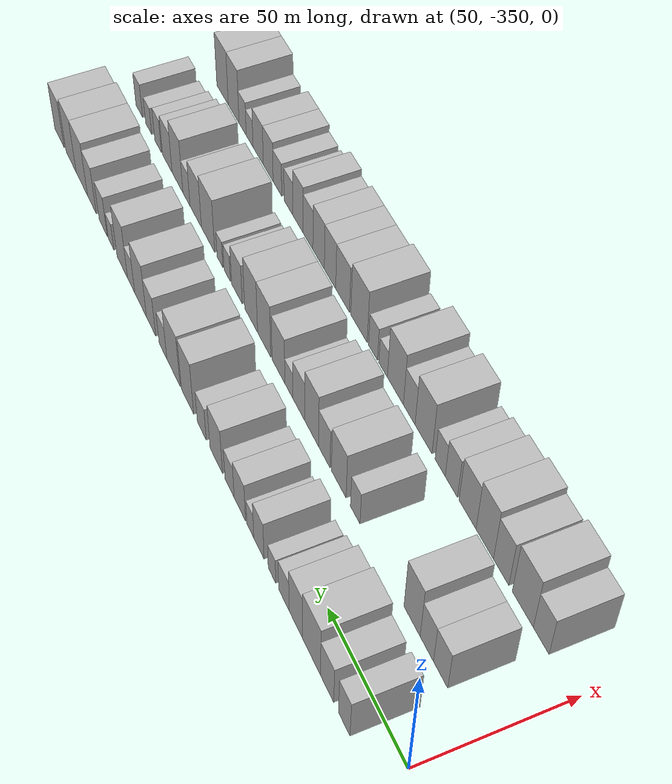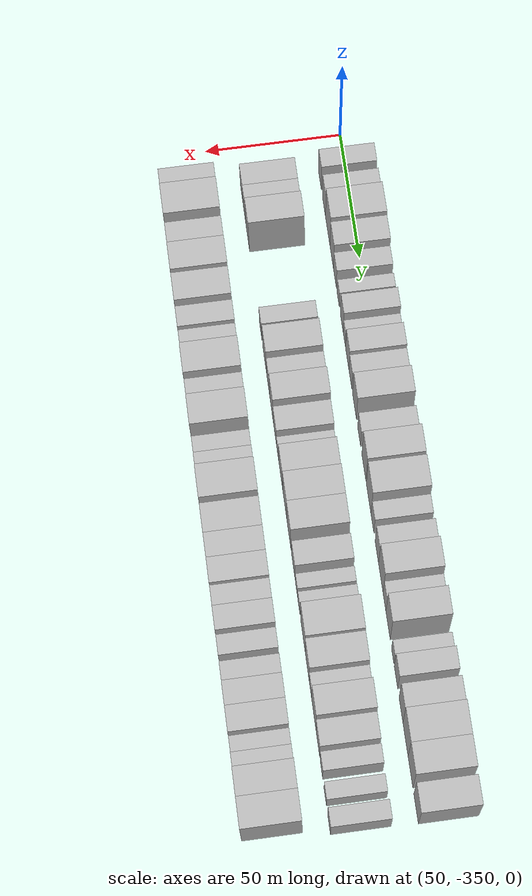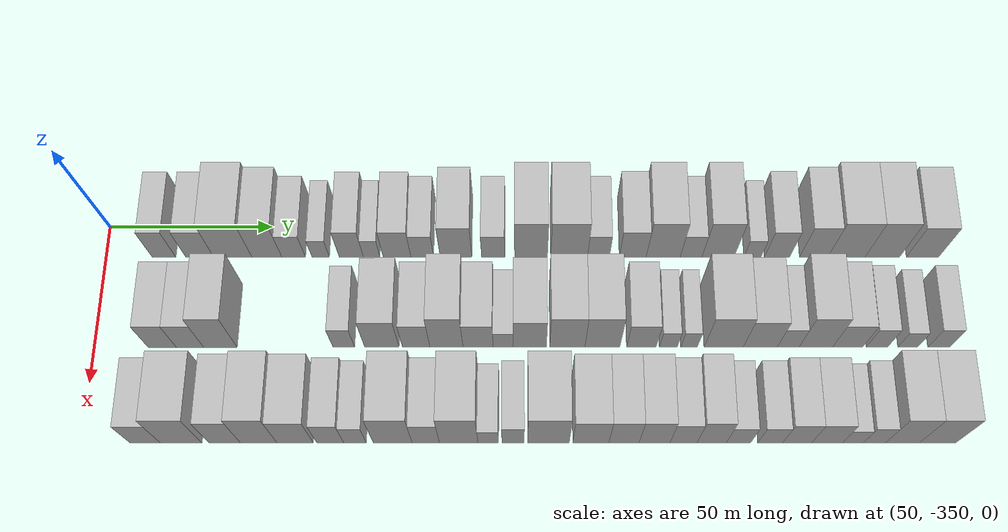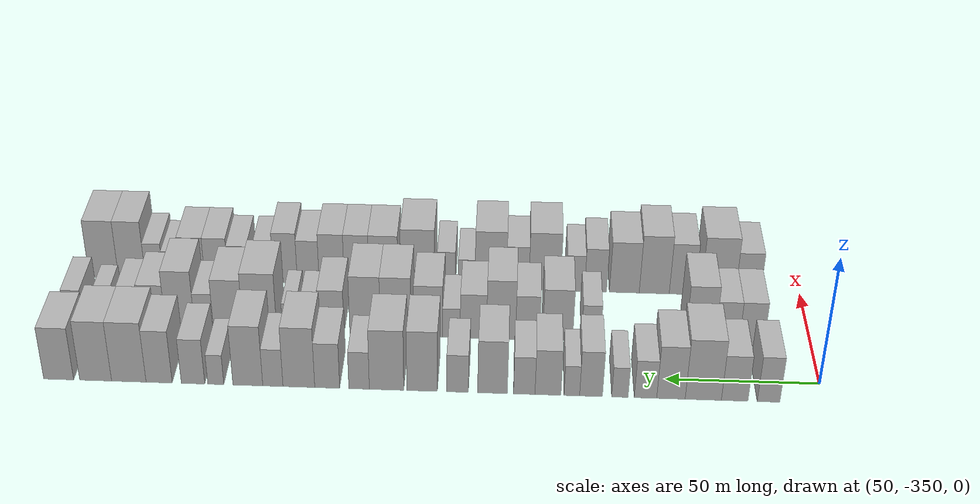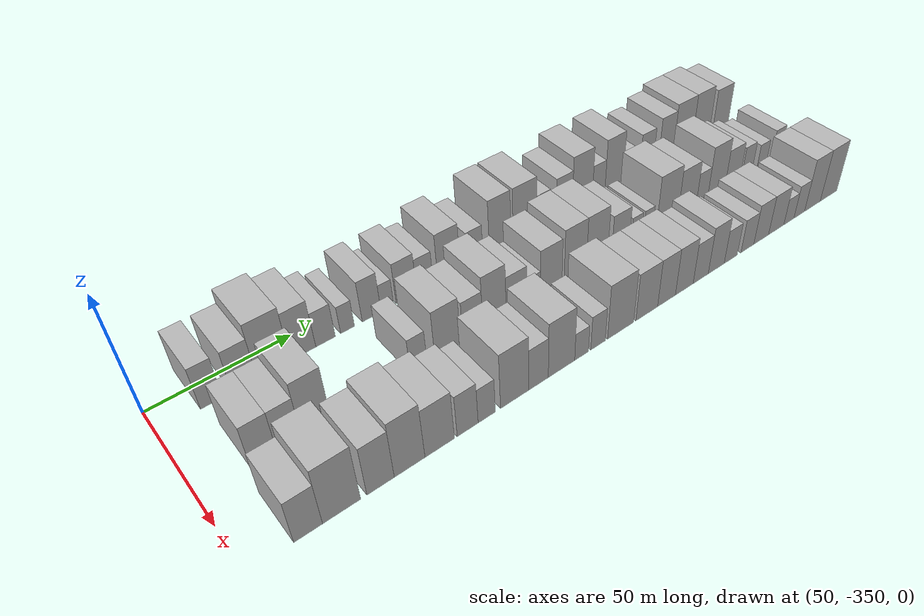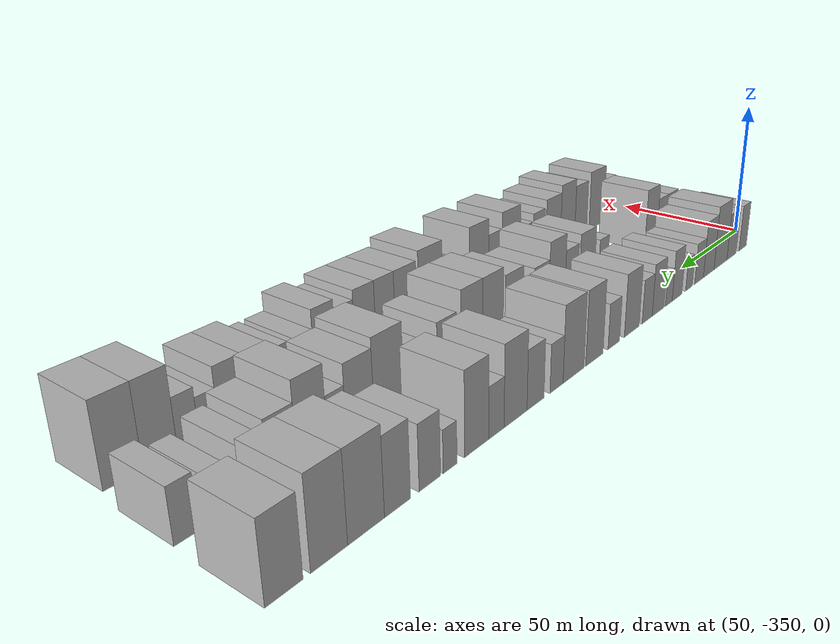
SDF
<sdf version="1.6">
 <world name="default">
  <model name="building_1">
   <static>1</static>
   <pose>50.0000 -332.3868 0 0.000000 0.000000 0.000000</pose>
   <link name="link">
    <pose>0 0 9.00 0 0 0</pose>
    <collision name="collision"><geometry><box><size>20.0000 7.2263 18.0000</size></box></geometry></collision>
    <visual name="visual">
     <cast_shadows>0</cast_shadows>
     <geometry><box><size>20.0000 7.2263 18.0000</size></box></geometry>
     <material>
      <script>
       <uri>model://HANNAS_wall/materials/scripts</uri>
       <uri>model://HANNAS_wall/materials/textures</uri>
       <name>vrc/HANNAS_wall</name>
      </script>
     </material>
    </visual>
   </link>
  </model>
  <model name="building_2">
   <static>1</static>
   <pose>50.0000 -321.5118 0 0.000000 0.000000 0.000000</pose>
   <link name="link">
    <pose>0 0 9.00 0 0 0</pose>
    <collision name="collision"><geometry><box><size>20.0000 8.5238 18.0000</size></box></geometry></collision>
    <visual name="visual">
     <cast_shadows>0</cast_shadows>
     <geometry><box><size>20.0000 8.5238 18.0000</size></box></geometry>
     <material>
      <script>
       <uri>model://HANNAS_wall/materials/scripts</uri>
       <uri>model://HANNAS_wall/materials/textures</uri>
       <name>vrc/HANNAS_wall</name>
      </script>
     </material>
    </visual>
   </link>
  </model>
  <model name="building_3">
   <static>1</static>
   <pose>50.0000 -311.4336 0 0.000000 0.000000 0.000000</pose>
   <link name="link">
    <pose>0 0 12.00 0 0 0</pose>
    <collision name="collision"><geometry><box><size>20.0000 11.6325 24.0000</size></box></geometry></collision>
    <visual name="visual">
     <cast_shadows>0</cast_shadows>
     <geometry><box><size>20.0000 11.6325 24.0000</size></box></geometry>
     <material>
      <script>
       <uri>model://HANNAS_wall/materials/scripts</uri>
       <uri>model://HANNAS_wall/materials/textures</uri>
       <name>vrc/HANNAS_wall</name>
      </script>
     </material>
    </visual>
   </link>
  </model>
  <model name="building_4">
   <static>1</static>
   <pose>50.0000 -301.0388 0 0.000000 0.000000 0.000000</pose>
   <link name="link">
    <pose>0 0 10.50 0 0 0</pose>
    <collision name="collision"><geometry><box><size>20.0000 9.1571 21.0000</size></box></geometry></collision>
    <visual name="visual">
     <cast_shadows>0</cast_shadows>
     <geometry><box><size>20.0000 9.1571 21.0000</size></box></geometry>
     <material>
      <script>
       <uri>model://HANNAS_wall/materials/scripts</uri>
       <uri>model://HANNAS_wall/materials/textures</uri>
       <name>vrc/HANNAS_wall</name>
      </script>
     </material>
    </visual>
   </link>
  </model>
  <model name="building_5">
   <static>1</static>
   <pose>50.0000 -292.8511 0 0.000000 0.000000 0.000000</pose>
   <link name="link">
    <pose>0 0 7.50 0 0 0</pose>
    <collision name="collision"><geometry><box><size>20.0000 7.2183 15.0000</size></box></geometry></collision>
    <visual name="visual">
     <cast_shadows>0</cast_shadows>
     <geometry><box><size>20.0000 7.2183 15.0000</size></box></geometry>
     <material>
      <script>
       <uri>model://HANNAS_wall/materials/scripts</uri>
       <uri>model://HANNAS_wall/materials/textures</uri>
       <name>vrc/HANNAS_wall</name>
      </script>
     </material>
    </visual>
   </link>
  </model>
  <model name="building_6">
   <static>1</static>
   <pose>50.0000 -284.6033 0 0.000000 0.000000 0.000000</pose>
   <link name="link">
    <pose>0 0 6.00 0 0 0</pose>
    <collision name="collision"><geometry><box><size>20.0000 5.2774 12.0000</size></box></geometry></collision>
    <visual name="visual">
     <cast_shadows>0</cast_shadows>
     <geometry><box><size>20.0000 5.2774 12.0000</size></box></geometry>
     <material>
      <script>
       <uri>model://HANNAS_wall/materials/scripts</uri>
       <uri>model://HANNAS_wall/materials/textures</uri>
       <name>vrc/HANNAS_wall</name>
      </script>
     </material>
    </visual>
   </link>
  </model>
  <model name="building_7">
   <static>1</static>
   <pose>50.0000 -275.2756 0 0.000000 0.000000 0.000000</pose>
   <link name="link">
    <pose>0 0 9.00 0 0 0</pose>
    <collision name="collision"><geometry><box><size>20.0000 7.3779 18.0000</size></box></geometry></collision>
    <visual name="visual">
     <cast_shadows>0</cast_shadows>
     <geometry><box><size>20.0000 7.3779 18.0000</size></box></geometry>
     <material>
      <script>
       <uri>model://HANNAS_wall/materials/scripts</uri>
       <uri>model://HANNAS_wall/materials/textures</uri>
       <name>vrc/HANNAS_wall</name>
      </script>
     </material>
    </visual>
   </link>
  </model>
  <model name="building_8">
   <static>1</static>
   <pose>50.0000 -269.0671 0 0.000000 0.000000 0.000000</pose>
   <link name="link">
    <pose>0 0 6.00 0 0 0</pose>
    <collision name="collision"><geometry><box><size>20.0000 5.0391 12.0000</size></box></geometry></collision>
    <visual name="visual">
     <cast_shadows>0</cast_shadows>
     <geometry><box><size>20.0000 5.0391 12.0000</size></box></geometry>
     <material>
      <script>
       <uri>model://HANNAS_wall/materials/scripts</uri>
       <uri>model://HANNAS_wall/materials/textures</uri>
       <name>vrc/HANNAS_wall</name>
      </script>
     </material>
    </visual>
   </link>
  </model>
  <model name="building_9">
   <static>1</static>
   <pose>50.0000 -261.3368 0 0.000000 0.000000 0.000000</pose>
   <link name="link">
    <pose>0 0 9.00 0 0 0</pose>
    <collision name="collision"><geometry><box><size>20.0000 8.4215 18.0000</size></box></geometry></collision>
    <visual name="visual">
     <cast_shadows>0</cast_shadows>
     <geometry><box><size>20.0000 8.4215 18.0000</size></box></geometry>
     <material>
      <script>
       <uri>model://HANNAS_wall/materials/scripts</uri>
       <uri>model://HANNAS_wall/materials/textures</uri>
       <name>vrc/HANNAS_wall</name>
      </script>
     </material>
    </visual>
   </link>
  </model>
  <model name="building_10">
   <static>1</static>
   <pose>50.0000 -253.6555 0 0.000000 0.000000 0.000000</pose>
   <link name="link">
    <pose>0 0 7.50 0 0 0</pose>
    <collision name="collision"><geometry><box><size>20.0000 6.9411 15.0000</size></box></geometry></collision>
    <visual name="visual">
     <cast_shadows>0</cast_shadows>
     <geometry><box><size>20.0000 6.9411 15.0000</size></box></geometry>
     <material>
      <script>
       <uri>model://HANNAS_wall/materials/scripts</uri>
       <uri>model://HANNAS_wall/materials/textures</uri>
       <name>vrc/HANNAS_wall</name>
      </script>
     </material>
    </visual>
   </link>
  </model>
  <model name="building_11">
   <static>1</static>
   <pose>50.0000 -243.3619 0 0.000000 0.000000 0.000000</pose>
   <link name="link">
    <pose>0 0 10.50 0 0 0</pose>
    <collision name="collision"><geometry><box><size>20.0000 9.6462 21.0000</size></box></geometry></collision>
    <visual name="visual">
     <cast_shadows>0</cast_shadows>
     <geometry><box><size>20.0000 9.6462 21.0000</size></box></geometry>
     <material>
      <script>
       <uri>model://HANNAS_wall/materials/scripts</uri>
       <uri>model://HANNAS_wall/materials/textures</uri>
       <name>vrc/HANNAS_wall</name>
      </script>
     </material>
    </visual>
   </link>
  </model>
  <model name="building_12">
   <static>1</static>
   <pose>50.0000 -232.0014 0 0.000000 0.000000 0.000000</pose>
   <link name="link">
    <pose>0 0 7.50 0 0 0</pose>
    <collision name="collision"><geometry><box><size>20.0000 7.0747 15.0000</size></box></geometry></collision>
    <visual name="visual">
     <cast_shadows>0</cast_shadows>
     <geometry><box><size>20.0000 7.0747 15.0000</size></box></geometry>
     <material>
      <script>
       <uri>model://HANNAS_wall/materials/scripts</uri>
       <uri>model://HANNAS_wall/materials/textures</uri>
       <name>vrc/HANNAS_wall</name>
      </script>
     </material>
    </visual>
   </link>
  </model>
  <model name="building_13">
   <static>1</static>
   <pose>50.0000 -220.4815 0 0.000000 0.000000 0.000000</pose>
   <link name="link">
    <pose>0 0 12.00 0 0 0</pose>
    <collision name="collision"><geometry><box><size>20.0000 9.9652 24.0000</size></box></geometry></collision>
    <visual name="visual">
     <cast_shadows>0</cast_shadows>
     <geometry><box><size>20.0000 9.9652 24.0000</size></box></geometry>
     <material>
      <script>
       <uri>model://HANNAS_wall/materials/scripts</uri>
       <uri>model://HANNAS_wall/materials/textures</uri>
       <name>vrc/HANNAS_wall</name>
      </script>
     </material>
    </visual>
   </link>
  </model>
  <model name="building_14">
   <static>1</static>
   <pose>50.0000 -208.8800 0 0.000000 0.000000 0.000000</pose>
   <link name="link">
    <pose>0 0 12.00 0 0 0</pose>
    <collision name="collision"><geometry><box><size>20.0000 11.2376 24.0000</size></box></geometry></collision>
    <visual name="visual">
     <cast_shadows>0</cast_shadows>
     <geometry><box><size>20.0000 11.2376 24.0000</size></box></geometry>
     <material>
      <script>
       <uri>model://HANNAS_wall/materials/scripts</uri>
       <uri>model://HANNAS_wall/materials/textures</uri>
       <name>vrc/HANNAS_wall</name>
      </script>
     </material>
    </visual>
   </link>
  </model>
  <model name="building_15">
   <static>1</static>
   <pose>50.0000 -199.9194 0 0.000000 0.000000 0.000000</pose>
   <link name="link">
    <pose>0 0 7.50 0 0 0</pose>
    <collision name="collision"><geometry><box><size>20.0000 6.6837 15.0000</size></box></geometry></collision>
    <visual name="visual">
     <cast_shadows>0</cast_shadows>
     <geometry><box><size>20.0000 6.6837 15.0000</size></box></geometry>
     <material>
      <script>
       <uri>model://HANNAS_wall/materials/scripts</uri>
       <uri>model://HANNAS_wall/materials/textures</uri>
       <name>vrc/HANNAS_wall</name>
      </script>
     </material>
    </visual>
   </link>
  </model>
  <model name="building_16">
   <static>1</static>
   <pose>50.0000 -189.4994 0 0.000000 0.000000 0.000000</pose>
   <link name="link">
    <pose>0 0 9.00 0 0 0</pose>
    <collision name="collision"><geometry><box><size>20.0000 8.1563 18.0000</size></box></geometry></collision>
    <visual name="visual">
     <cast_shadows>0</cast_shadows>
     <geometry><box><size>20.0000 8.1563 18.0000</size></box></geometry>
     <material>
      <script>
       <uri>model://HANNAS_wall/materials/scripts</uri>
       <uri>model://HANNAS_wall/materials/textures</uri>
       <name>vrc/HANNAS_wall</name>
      </script>
     </material>
    </visual>
   </link>
  </model>
  <model name="building_17">
   <static>1</static>
   <pose>50.0000 -180.2169 0 0.000000 0.000000 0.000000</pose>
   <link name="link">
    <pose>0 0 12.00 0 0 0</pose>
    <collision name="collision"><geometry><box><size>20.0000 10.4087 24.0000</size></box></geometry></collision>
    <visual name="visual">
     <cast_shadows>0</cast_shadows>
     <geometry><box><size>20.0000 10.4087 24.0000</size></box></geometry>
     <material>
      <script>
       <uri>model://HANNAS_wall/materials/scripts</uri>
       <uri>model://HANNAS_wall/materials/textures</uri>
       <name>vrc/HANNAS_wall</name>
      </script>
     </material>
    </visual>
   </link>
  </model>
  <model name="building_18">
   <static>1</static>
   <pose>50.0000 -171.6984 0 0.000000 0.000000 0.000000</pose>
   <link name="link">
    <pose>0 0 7.50 0 0 0</pose>
    <collision name="collision"><geometry><box><size>20.0000 6.6282 15.0000</size></box></geometry></collision>
    <visual name="visual">
     <cast_shadows>0</cast_shadows>
     <geometry><box><size>20.0000 6.6282 15.0000</size></box></geometry>
     <material>
      <script>
       <uri>model://HANNAS_wall/materials/scripts</uri>
       <uri>model://HANNAS_wall/materials/textures</uri>
       <name>vrc/HANNAS_wall</name>
      </script>
     </material>
    </visual>
   </link>
  </model>
  <model name="building_19">
   <static>1</static>
   <pose>50.0000 -163.4834 0 0.000000 0.000000 0.000000</pose>
   <link name="link">
    <pose>0 0 12.00 0 0 0</pose>
    <collision name="collision"><geometry><box><size>20.0000 9.8018 24.0000</size></box></geometry></collision>
    <visual name="visual">
     <cast_shadows>0</cast_shadows>
     <geometry><box><size>20.0000 9.8018 24.0000</size></box></geometry>
     <material>
      <script>
       <uri>model://HANNAS_wall/materials/scripts</uri>
       <uri>model://HANNAS_wall/materials/textures</uri>
       <name>vrc/HANNAS_wall</name>
      </script>
     </material>
    </visual>
   </link>
  </model>
  <model name="building_20">
   <static>1</static>
   <pose>50.0000 -152.9555 0 0.000000 0.000000 0.000000</pose>
   <link name="link">
    <pose>0 0 6.00 0 0 0</pose>
    <collision name="collision"><geometry><box><size>20.0000 5.2540 12.0000</size></box></geometry></collision>
    <visual name="visual">
     <cast_shadows>0</cast_shadows>
     <geometry><box><size>20.0000 5.2540 12.0000</size></box></geometry>
     <material>
      <script>
       <uri>model://HANNAS_wall/materials/scripts</uri>
       <uri>model://HANNAS_wall/materials/textures</uri>
       <name>vrc/HANNAS_wall</name>
      </script>
     </material>
    </visual>
   </link>
  </model>
  <model name="building_21">
   <static>1</static>
   <pose>50.0000 -145.4644 0 0.000000 0.000000 0.000000</pose>
   <link name="link">
    <pose>0 0 9.00 0 0 0</pose>
    <collision name="collision"><geometry><box><size>20.0000 7.7281 18.0000</size></box></geometry></collision>
    <visual name="visual">
     <cast_shadows>0</cast_shadows>
     <geometry><box><size>20.0000 7.7281 18.0000</size></box></geometry>
     <material>
      <script>
       <uri>model://HANNAS_wall/materials/scripts</uri>
       <uri>model://HANNAS_wall/materials/textures</uri>
       <name>vrc/HANNAS_wall</name>
      </script>
     </material>
    </visual>
   </link>
  </model>
  <model name="building_22">
   <static>1</static>
   <pose>50.0000 -134.2863 0 0.000000 0.000000 0.000000</pose>
   <link name="link">
    <pose>0 0 10.50 0 0 0</pose>
    <collision name="collision"><geometry><box><size>20.0000 8.6280 21.0000</size></box></geometry></collision>
    <visual name="visual">
     <cast_shadows>0</cast_shadows>
     <geometry><box><size>20.0000 8.6280 21.0000</size></box></geometry>
     <material>
      <script>
       <uri>model://HANNAS_wall/materials/scripts</uri>
       <uri>model://HANNAS_wall/materials/textures</uri>
       <name>vrc/HANNAS_wall</name>
      </script>
     </material>
    </visual>
   </link>
  </model>
  <model name="building_23">
   <static>1</static>
   <pose>50.0000 -124.2714 0 0.000000 0.000000 0.000000</pose>
   <link name="link">
    <pose>0 0 12.00 0 0 0</pose>
    <collision name="collision"><geometry><box><size>20.0000 11.4019 24.0000</size></box></geometry></collision>
    <visual name="visual">
     <cast_shadows>0</cast_shadows>
     <geometry><box><size>20.0000 11.4019 24.0000</size></box></geometry>
     <material>
      <script>
       <uri>model://HANNAS_wall/materials/scripts</uri>
       <uri>model://HANNAS_wall/materials/textures</uri>
       <name>vrc/HANNAS_wall</name>
      </script>
     </material>
    </visual>
   </link>
  </model>
  <model name="building_24">
   <static>1</static>
   <pose>50.0000 -113.2940 0 0.000000 0.000000 0.000000</pose>
   <link name="link">
    <pose>0 0 12.00 0 0 0</pose>
    <collision name="collision"><geometry><box><size>20.0000 10.5528 24.0000</size></box></geometry></collision>
    <visual name="visual">
     <cast_shadows>0</cast_shadows>
     <geometry><box><size>20.0000 10.5528 24.0000</size></box></geometry>
     <material>
      <script>
       <uri>model://HANNAS_wall/materials/scripts</uri>
       <uri>model://HANNAS_wall/materials/textures</uri>
       <name>vrc/HANNAS_wall</name>
      </script>
     </material>
    </visual>
   </link>
  </model>
  <model name="building_25">
   <static>1</static>
   <pose>50.0000 -101.0536 0 0.000000 0.000000 0.000000</pose>
   <link name="link">
    <pose>0 0 10.50 0 0 0</pose>
    <collision name="collision"><geometry><box><size>20.0000 9.9282 21.0000</size></box></geometry></collision>
    <visual name="visual">
     <cast_shadows>0</cast_shadows>
     <geometry><box><size>20.0000 9.9282 21.0000</size></box></geometry>
     <material>
      <script>
       <uri>model://HANNAS_wall/materials/scripts</uri>
       <uri>model://HANNAS_wall/materials/textures</uri>
       <name>vrc/HANNAS_wall</name>
      </script>
     </material>
    </visual>
   </link>
  </model>
  <model name="building_73">
   <static>1</static>
   <pose>79.0000 -329.8098 0 0.000000 0.000000 0.000000</pose>
   <link name="link">
    <pose>0 0 9.00 0 0 0</pose>
    <collision name="collision"><geometry><box><size>20.0000 8.3805 18.0000</size></box></geometry></collision>
    <visual name="visual">
     <cast_shadows>0</cast_shadows>
     <geometry><box><size>20.0000 8.3805 18.0000</size></box></geometry>
     <material>
      <script>
       <uri>model://HANNAS_wall/materials/scripts</uri>
       <uri>model://HANNAS_wall/materials/textures</uri>
       <name>vrc/HANNAS_wall</name>
      </script>
     </material>
    </visual>
   </link>
  </model>
  <model name="building_74">
   <static>1</static>
   <pose>79.0000 -321.5927 0 0.000000 0.000000 0.000000</pose>
   <link name="link">
    <pose>0 0 9.00 0 0 0</pose>
    <collision name="collision"><geometry><box><size>20.0000 8.0536 18.0000</size></box></geometry></collision>
    <visual name="visual">
     <cast_shadows>0</cast_shadows>
     <geometry><box><size>20.0000 8.0536 18.0000</size></box></geometry>
     <material>
      <script>
       <uri>model://HANNAS_wall/materials/scripts</uri>
       <uri>model://HANNAS_wall/materials/textures</uri>
       <name>vrc/HANNAS_wall</name>
      </script>
     </material>
    </visual>
   </link>
  </model>
  <model name="building_75">
   <static>1</static>
   <pose>79.0000 -312.5993 0 0.000000 0.000000 0.000000</pose>
   <link name="link">
    <pose>0 0 12.00 0 0 0</pose>
    <collision name="collision"><geometry><box><size>20.0000 9.9333 24.0000</size></box></geometry></collision>
    <visual name="visual">
     <cast_shadows>0</cast_shadows>
     <geometry><box><size>20.0000 9.9333 24.0000</size></box></geometry>
     <material>
      <script>
       <uri>model://HANNAS_wall/materials/scripts</uri>
       <uri>model://HANNAS_wall/materials/textures</uri>
       <name>vrc/HANNAS_wall</name>
      </script>
     </material>
    </visual>
   </link>
  </model>
  <model name="building_76">
   <static>1</static>
   <pose>79.0000 -276.0171 0 0.000000 0.000000 0.000000</pose>
   <link name="link">
    <pose>0 0 7.50 0 0 0</pose>
    <collision name="collision"><geometry><box><size>20.0000 6.4104 15.0000</size></box></geometry></collision>
    <visual name="visual">
     <cast_shadows>0</cast_shadows>
     <geometry><box><size>20.0000 6.4104 15.0000</size></box></geometry>
     <material>
      <script>
       <uri>model://HANNAS_wall/materials/scripts</uri>
       <uri>model://HANNAS_wall/materials/textures</uri>
       <name>vrc/HANNAS_wall</name>
      </script>
     </material>
    </visual>
   </link>
  </model>
  <model name="building_77">
   <static>1</static>
   <pose>79.0000 -264.7361 0 0.000000 0.000000 0.000000</pose>
   <link name="link">
    <pose>0 0 10.50 0 0 0</pose>
    <collision name="collision"><geometry><box><size>20.0000 10.1515 21.0000</size></box></geometry></collision>
    <visual name="visual">
     <cast_shadows>0</cast_shadows>
     <geometry><box><size>20.0000 10.1515 21.0000</size></box></geometry>
     <material>
      <script>
       <uri>model://HANNAS_wall/materials/scripts</uri>
       <uri>model://HANNAS_wall/materials/textures</uri>
       <name>vrc/HANNAS_wall</name>
      </script>
     </material>
    </visual>
   </link>
  </model>
  <model name="building_78">
   <static>1</static>
   <pose>79.0000 -254.5907 0 0.000000 0.000000 0.000000</pose>
   <link name="link">
    <pose>0 0 9.00 0 0 0</pose>
    <collision name="collision"><geometry><box><size>20.0000 8.1394 18.0000</size></box></geometry></collision>
    <visual name="visual">
     <cast_shadows>0</cast_shadows>
     <geometry><box><size>20.0000 8.1394 18.0000</size></box></geometry>
     <material>
      <script>
       <uri>model://HANNAS_wall/materials/scripts</uri>
       <uri>model://HANNAS_wall/materials/textures</uri>
       <name>vrc/HANNAS_wall</name>
      </script>
     </material>
    </visual>
   </link>
  </model>
  <model name="building_79">
   <static>1</static>
   <pose>79.0000 -245.6080 0 0.000000 0.000000 0.000000</pose>
   <link name="link">
    <pose>0 0 12.00 0 0 0</pose>
    <collision name="collision"><geometry><box><size>20.0000 9.8260 24.0000</size></box></geometry></collision>
    <visual name="visual">
     <cast_shadows>0</cast_shadows>
     <geometry><box><size>20.0000 9.8260 24.0000</size></box></geometry>
     <material>
      <script>
       <uri>model://HANNAS_wall/materials/scripts</uri>
       <uri>model://HANNAS_wall/materials/textures</uri>
       <name>vrc/HANNAS_wall</name>
      </script>
     </material>
    </visual>
   </link>
  </model>
  <model name="building_80">
   <static>1</static>
   <pose>79.0000 -236.2220 0 0.000000 0.000000 0.000000</pose>
   <link name="link">
    <pose>0 0 9.00 0 0 0</pose>
    <collision name="collision"><geometry><box><size>20.0000 8.9460 18.0000</size></box></geometry></collision>
    <visual name="visual">
     <cast_shadows>0</cast_shadows>
     <geometry><box><size>20.0000 8.9460 18.0000</size></box></geometry>
     <material>
      <script>
       <uri>model://HANNAS_wall/materials/scripts</uri>
       <uri>model://HANNAS_wall/materials/textures</uri>
       <name>vrc/HANNAS_wall</name>
      </script>
     </material>
    </visual>
   </link>
  </model>
  <model name="building_81">
   <static>1</static>
   <pose>79.0000 -228.7769 0 0.000000 0.000000 0.000000</pose>
   <link name="link">
    <pose>0 0 6.00 0 0 0</pose>
    <collision name="collision"><geometry><box><size>20.0000 5.9442 12.0000</size></box></geometry></collision>
    <visual name="visual">
     <cast_shadows>0</cast_shadows>
     <geometry><box><size>20.0000 5.9442 12.0000</size></box></geometry>
     <material>
      <script>
       <uri>model://HANNAS_wall/materials/scripts</uri>
       <uri>model://HANNAS_wall/materials/textures</uri>
       <name>vrc/HANNAS_wall</name>
      </script>
     </material>
    </visual>
   </link>
  </model>
  <model name="building_82">
   <static>1</static>
   <pose>79.0000 -220.9159 0 0.000000 0.000000 0.000000</pose>
   <link name="link">
    <pose>0 0 10.50 0 0 0</pose>
    <collision name="collision"><geometry><box><size>20.0000 9.7780 21.0000</size></box></geometry></collision>
    <visual name="visual">
     <cast_shadows>0</cast_shadows>
     <geometry><box><size>20.0000 9.7780 21.0000</size></box></geometry>
     <material>
      <script>
       <uri>model://HANNAS_wall/materials/scripts</uri>
       <uri>model://HANNAS_wall/materials/textures</uri>
       <name>vrc/HANNAS_wall</name>
      </script>
     </material>
    </visual>
   </link>
  </model>
  <model name="building_83">
   <static>1</static>
   <pose>79.0000 -209.8161 0 0.000000 0.000000 0.000000</pose>
   <link name="link">
    <pose>0 0 12.00 0 0 0</pose>
    <collision name="collision"><geometry><box><size>20.0000 10.4216 24.0000</size></box></geometry></collision>
    <visual name="visual">
     <cast_shadows>0</cast_shadows>
     <geometry><box><size>20.0000 10.4216 24.0000</size></box></geometry>
     <material>
      <script>
       <uri>model://HANNAS_wall/materials/scripts</uri>
       <uri>model://HANNAS_wall/materials/textures</uri>
       <name>vrc/HANNAS_wall</name>
      </script>
     </material>
    </visual>
   </link>
  </model>
  <model name="building_84">
   <static>1</static>
   <pose>79.0000 -199.4347 0 0.000000 0.000000 0.000000</pose>
   <link name="link">
    <pose>0 0 12.00 0 0 0</pose>
    <collision name="collision"><geometry><box><size>20.0000 10.3412 24.0000</size></box></geometry></collision>
    <visual name="visual">
     <cast_shadows>0</cast_shadows>
     <geometry><box><size>20.0000 10.3412 24.0000</size></box></geometry>
     <material>
      <script>
       <uri>model://HANNAS_wall/materials/scripts</uri>
       <uri>model://HANNAS_wall/materials/textures</uri>
       <name>vrc/HANNAS_wall</name>
      </script>
     </material>
    </visual>
   </link>
  </model>
  <model name="building_85">
   <static>1</static>
   <pose>79.0000 -187.8968 0 0.000000 0.000000 0.000000</pose>
   <link name="link">
    <pose>0 0 9.00 0 0 0</pose>
    <collision name="collision"><geometry><box><size>20.0000 8.7347 18.0000</size></box></geometry></collision>
    <visual name="visual">
     <cast_shadows>0</cast_shadows>
     <geometry><box><size>20.0000 8.7347 18.0000</size></box></geometry>
     <material>
      <script>
       <uri>model://HANNAS_wall/materials/scripts</uri>
       <uri>model://HANNAS_wall/materials/textures</uri>
       <name>vrc/HANNAS_wall</name>
      </script>
     </material>
    </visual>
   </link>
  </model>
  <model name="building_86">
   <static>1</static>
   <pose>79.0000 -179.8710 0 0.000000 0.000000 0.000000</pose>
   <link name="link">
    <pose>0 0 6.00 0 0 0</pose>
    <collision name="collision"><geometry><box><size>20.0000 5.3169 12.0000</size></box></geometry></collision>
    <visual name="visual">
     <cast_shadows>0</cast_shadows>
     <geometry><box><size>20.0000 5.3169 12.0000</size></box></geometry>
     <material>
      <script>
       <uri>model://HANNAS_wall/materials/scripts</uri>
       <uri>model://HANNAS_wall/materials/textures</uri>
       <name>vrc/HANNAS_wall</name>
      </script>
     </material>
    </visual>
   </link>
  </model>
  <model name="building_87">
   <static>1</static>
   <pose>79.0000 -173.7545 0 0.000000 0.000000 0.000000</pose>
   <link name="link">
    <pose>0 0 6.00 0 0 0</pose>
    <collision name="collision"><geometry><box><size>20.0000 4.9160 12.0000</size></box></geometry></collision>
    <visual name="visual">
     <cast_shadows>0</cast_shadows>
     <geometry><box><size>20.0000 4.9160 12.0000</size></box></geometry>
     <material>
      <script>
       <uri>model://HANNAS_wall/materials/scripts</uri>
       <uri>model://HANNAS_wall/materials/textures</uri>
       <name>vrc/HANNAS_wall</name>
      </script>
     </material>
    </visual>
   </link>
  </model>
  <model name="building_88">
   <static>1</static>
   <pose>79.0000 -163.5194 0 0.000000 0.000000 0.000000</pose>
   <link name="link">
    <pose>0 0 12.00 0 0 0</pose>
    <collision name="collision"><geometry><box><size>20.0000 11.5542 24.0000</size></box></geometry></collision>
    <visual name="visual">
     <cast_shadows>0</cast_shadows>
     <geometry><box><size>20.0000 11.5542 24.0000</size></box></geometry>
     <material>
      <script>
       <uri>model://HANNAS_wall/materials/scripts</uri>
       <uri>model://HANNAS_wall/materials/textures</uri>
       <name>vrc/HANNAS_wall</name>
      </script>
     </material>
    </visual>
   </link>
  </model>
  <model name="building_89">
   <static>1</static>
   <pose>79.0000 -152.6874 0 0.000000 0.000000 0.000000</pose>
   <link name="link">
    <pose>0 0 10.50 0 0 0</pose>
    <collision name="collision"><geometry><box><size>20.0000 10.1097 21.0000</size></box></geometry></collision>
    <visual name="visual">
     <cast_shadows>0</cast_shadows>
     <geometry><box><size>20.0000 10.1097 21.0000</size></box></geometry>
     <material>
      <script>
       <uri>model://HANNAS_wall/materials/scripts</uri>
       <uri>model://HANNAS_wall/materials/textures</uri>
       <name>vrc/HANNAS_wall</name>
      </script>
     </material>
    </visual>
   </link>
  </model>
  <model name="building_90">
   <static>1</static>
   <pose>79.0000 -144.4076 0 0.000000 0.000000 0.000000</pose>
   <link name="link">
    <pose>0 0 7.50 0 0 0</pose>
    <collision name="collision"><geometry><box><size>20.0000 6.4501 15.0000</size></box></geometry></collision>
    <visual name="visual">
     <cast_shadows>0</cast_shadows>
     <geometry><box><size>20.0000 6.4501 15.0000</size></box></geometry>
     <material>
      <script>
       <uri>model://HANNAS_wall/materials/scripts</uri>
       <uri>model://HANNAS_wall/materials/textures</uri>
       <name>vrc/HANNAS_wall</name>
      </script>
     </material>
    </visual>
   </link>
  </model>
  <model name="building_91">
   <static>1</static>
   <pose>79.0000 -136.1955 0 0.000000 0.000000 0.000000</pose>
   <link name="link">
    <pose>0 0 12.00 0 0 0</pose>
    <collision name="collision"><geometry><box><size>20.0000 9.9741 24.0000</size></box></geometry></collision>
    <visual name="visual">
     <cast_shadows>0</cast_shadows>
     <geometry><box><size>20.0000 9.9741 24.0000</size></box></geometry>
     <material>
      <script>
       <uri>model://HANNAS_wall/materials/scripts</uri>
       <uri>model://HANNAS_wall/materials/textures</uri>
       <name>vrc/HANNAS_wall</name>
      </script>
     </material>
    </visual>
   </link>
  </model>
  <model name="building_92">
   <static>1</static>
   <pose>79.0000 -126.7322 0 0.000000 0.000000 0.000000</pose>
   <link name="link">
    <pose>0 0 9.00 0 0 0</pose>
    <collision name="collision"><geometry><box><size>20.0000 8.9524 18.0000</size></box></geometry></collision>
    <visual name="visual">
     <cast_shadows>0</cast_shadows>
     <geometry><box><size>20.0000 8.9524 18.0000</size></box></geometry>
     <material>
      <script>
       <uri>model://HANNAS_wall/materials/scripts</uri>
       <uri>model://HANNAS_wall/materials/textures</uri>
       <name>vrc/HANNAS_wall</name>
      </script>
     </material>
    </visual>
   </link>
  </model>
  <model name="building_93">
   <static>1</static>
   <pose>79.0000 -118.0526 0 0.000000 0.000000 0.000000</pose>
   <link name="link">
    <pose>0 0 7.50 0 0 0</pose>
    <collision name="collision"><geometry><box><size>20.0000 6.4068 15.0000</size></box></geometry></collision>
    <visual name="visual">
     <cast_shadows>0</cast_shadows>
     <geometry><box><size>20.0000 6.4068 15.0000</size></box></geometry>
     <material>
      <script>
       <uri>model://HANNAS_wall/materials/scripts</uri>
       <uri>model://HANNAS_wall/materials/textures</uri>
       <name>vrc/HANNAS_wall</name>
      </script>
     </material>
    </visual>
   </link>
  </model>
  <model name="building_94">
   <static>1</static>
   <pose>79.0000 -108.9074 0 0.000000 0.000000 0.000000</pose>
   <link name="link">
    <pose>0 0 6.00 0 0 0</pose>
    <collision name="collision"><geometry><box><size>20.0000 5.8836 12.0000</size></box></geometry></collision>
    <visual name="visual">
     <cast_shadows>0</cast_shadows>
     <geometry><box><size>20.0000 5.8836 12.0000</size></box></geometry>
     <material>
      <script>
       <uri>model://HANNAS_wall/materials/scripts</uri>
       <uri>model://HANNAS_wall/materials/textures</uri>
       <name>vrc/HANNAS_wall</name>
      </script>
     </material>
    </visual>
   </link>
  </model>
  <model name="building_95">
   <static>1</static>
   <pose>79.0000 -99.7361 0 0.000000 0.000000 0.000000</pose>
   <link name="link">
    <pose>0 0 7.50 0 0 0</pose>
    <collision name="collision"><geometry><box><size>20.0000 6.4590 15.0000</size></box></geometry></collision>
    <visual name="visual">
     <cast_shadows>0</cast_shadows>
     <geometry><box><size>20.0000 6.4590 15.0000</size></box></geometry>
     <material>
      <script>
       <uri>model://HANNAS_wall/materials/scripts</uri>
       <uri>model://HANNAS_wall/materials/textures</uri>
       <name>vrc/HANNAS_wall</name>
      </script>
     </material>
    </visual>
   </link>
  </model>
  <model name="building_145">
   <static>1</static>
   <pose>108.0000 -331.6269 0 0.000000 0.000000 0.000000</pose>
   <link name="link">
    <pose>0 0 9.00 0 0 0</pose>
    <collision name="collision"><geometry><box><size>20.0000 8.7462 18.0000</size></box></geometry></collision>
    <visual name="visual">
     <cast_shadows>0</cast_shadows>
     <geometry><box><size>20.0000 8.7462 18.0000</size></box></geometry>
     <material>
      <script>
       <uri>model://HANNAS_wall/materials/scripts</uri>
       <uri>model://HANNAS_wall/materials/textures</uri>
       <name>vrc/HANNAS_wall</name>
      </script>
     </material>
    </visual>
   </link>
  </model>
  <model name="building_146">
   <static>1</static>
   <pose>108.0000 -321.2691 0 0.000000 0.000000 0.000000</pose>
   <link name="link">
    <pose>0 0 12.00 0 0 0</pose>
    <collision name="collision"><geometry><box><size>20.0000 11.9694 24.0000</size></box></geometry></collision>
    <visual name="visual">
     <cast_shadows>0</cast_shadows>
     <geometry><box><size>20.0000 11.9694 24.0000</size></box></geometry>
     <material>
      <script>
       <uri>model://HANNAS_wall/materials/scripts</uri>
       <uri>model://HANNAS_wall/materials/textures</uri>
       <name>vrc/HANNAS_wall</name>
      </script>
     </material>
    </visual>
   </link>
  </model>
  <model name="building_147">
   <static>1</static>
   <pose>108.0000 -308.7554 0 0.000000 0.000000 0.000000</pose>
   <link name="link">
    <pose>0 0 10.50 0 0 0</pose>
    <collision name="collision"><geometry><box><size>20.0000 9.0581 21.0000</size></box></geometry></collision>
    <visual name="visual">
     <cast_shadows>0</cast_shadows>
     <geometry><box><size>20.0000 9.0581 21.0000</size></box></geometry>
     <material>
      <script>
       <uri>model://HANNAS_wall/materials/scripts</uri>
       <uri>model://HANNAS_wall/materials/textures</uri>
       <name>vrc/HANNAS_wall</name>
      </script>
     </material>
    </visual>
   </link>
  </model>
  <model name="building_148">
   <static>1</static>
   <pose>108.0000 -298.9719 0 0.000000 0.000000 0.000000</pose>
   <link name="link">
    <pose>0 0 12.00 0 0 0</pose>
    <collision name="collision"><geometry><box><size>20.0000 10.5088 24.0000</size></box></geometry></collision>
    <visual name="visual">
     <cast_shadows>0</cast_shadows>
     <geometry><box><size>20.0000 10.5088 24.0000</size></box></geometry>
     <material>
      <script>
       <uri>model://HANNAS_wall/materials/scripts</uri>
       <uri>model://HANNAS_wall/materials/textures</uri>
       <name>vrc/HANNAS_wall</name>
      </script>
     </material>
    </visual>
   </link>
  </model>
  <model name="building_149">
   <static>1</static>
   <pose>108.0000 -288.4870 0 0.000000 0.000000 0.000000</pose>
   <link name="link">
    <pose>0 0 10.50 0 0 0</pose>
    <collision name="collision"><geometry><box><size>20.0000 10.4610 21.0000</size></box></geometry></collision>
    <visual name="visual">
     <cast_shadows>0</cast_shadows>
     <geometry><box><size>20.0000 10.4610 21.0000</size></box></geometry>
     <material>
      <script>
       <uri>model://HANNAS_wall/materials/scripts</uri>
       <uri>model://HANNAS_wall/materials/textures</uri>
       <name>vrc/HANNAS_wall</name>
      </script>
     </material>
    </visual>
   </link>
  </model>
  <model name="building_150">
   <static>1</static>
   <pose>108.0000 -278.3797 0 0.000000 0.000000 0.000000</pose>
   <link name="link">
    <pose>0 0 9.00 0 0 0</pose>
    <collision name="collision"><geometry><box><size>20.0000 7.7537 18.0000</size></box></geometry></collision>
    <visual name="visual">
     <cast_shadows>0</cast_shadows>
     <geometry><box><size>20.0000 7.7537 18.0000</size></box></geometry>
     <material>
      <script>
       <uri>model://HANNAS_wall/materials/scripts</uri>
       <uri>model://HANNAS_wall/materials/textures</uri>
       <name>vrc/HANNAS_wall</name>
      </script>
     </material>
    </visual>
   </link>
  </model>
  <model name="building_151">
   <static>1</static>
   <pose>108.0000 -271.2611 0 0.000000 0.000000 0.000000</pose>
   <link name="link">
    <pose>0 0 7.50 0 0 0</pose>
    <collision name="collision"><geometry><box><size>20.0000 6.4836 15.0000</size></box></geometry></collision>
    <visual name="visual">
     <cast_shadows>0</cast_shadows>
     <geometry><box><size>20.0000 6.4836 15.0000</size></box></geometry>
     <material>
      <script>
       <uri>model://HANNAS_wall/materials/scripts</uri>
       <uri>model://HANNAS_wall/materials/textures</uri>
       <name>vrc/HANNAS_wall</name>
      </script>
     </material>
    </visual>
   </link>
  </model>
  <model name="building_152">
   <static>1</static>
   <pose>108.0000 -260.4339 0 0.000000 0.000000 0.000000</pose>
   <link name="link">
    <pose>0 0 12.00 0 0 0</pose>
    <collision name="collision"><geometry><box><size>20.0000 11.1707 24.0000</size></box></geometry></collision>
    <visual name="visual">
     <cast_shadows>0</cast_shadows>
     <geometry><box><size>20.0000 11.1707 24.0000</size></box></geometry>
     <material>
      <script>
       <uri>model://HANNAS_wall/materials/scripts</uri>
       <uri>model://HANNAS_wall/materials/textures</uri>
       <name>vrc/HANNAS_wall</name>
      </script>
     </material>
    </visual>
   </link>
  </model>
  <model name="building_153">
   <static>1</static>
   <pose>108.0000 -250.9158 0 0.000000 0.000000 0.000000</pose>
   <link name="link">
    <pose>0 0 9.00 0 0 0</pose>
    <collision name="collision"><geometry><box><size>20.0000 7.8657 18.0000</size></box></geometry></collision>
    <visual name="visual">
     <cast_shadows>0</cast_shadows>
     <geometry><box><size>20.0000 7.8657 18.0000</size></box></geometry>
     <material>
      <script>
       <uri>model://HANNAS_wall/materials/scripts</uri>
       <uri>model://HANNAS_wall/materials/textures</uri>
       <name>vrc/HANNAS_wall</name>
      </script>
     </material>
    </visual>
   </link>
  </model>
  <model name="building_154">
   <static>1</static>
   <pose>108.0000 -241.4458 0 0.000000 0.000000 0.000000</pose>
   <link name="link">
    <pose>0 0 12.00 0 0 0</pose>
    <collision name="collision"><geometry><box><size>20.0000 11.0742 24.0000</size></box></geometry></collision>
    <visual name="visual">
     <cast_shadows>0</cast_shadows>
     <geometry><box><size>20.0000 11.0742 24.0000</size></box></geometry>
     <material>
      <script>
       <uri>model://HANNAS_wall/materials/scripts</uri>
       <uri>model://HANNAS_wall/materials/textures</uri>
       <name>vrc/HANNAS_wall</name>
      </script>
     </material>
    </visual>
   </link>
  </model>
  <model name="building_155">
   <static>1</static>
   <pose>108.0000 -232.9372 0 0.000000 0.000000 0.000000</pose>
   <link name="link">
    <pose>0 0 6.00 0 0 0</pose>
    <collision name="collision"><geometry><box><size>20.0000 5.9429 12.0000</size></box></geometry></collision>
    <visual name="visual">
     <cast_shadows>0</cast_shadows>
     <geometry><box><size>20.0000 5.9429 12.0000</size></box></geometry>
     <material>
      <script>
       <uri>model://HANNAS_wall/materials/scripts</uri>
       <uri>model://HANNAS_wall/materials/textures</uri>
       <name>vrc/HANNAS_wall</name>
      </script>
     </material>
    </visual>
   </link>
  </model>
  <model name="building_156">
   <static>1</static>
   <pose>108.0000 -225.7718 0 0.000000 0.000000 0.000000</pose>
   <link name="link">
    <pose>0 0 7.50 0 0 0</pose>
    <collision name="collision"><geometry><box><size>20.0000 6.3879 15.0000</size></box></geometry></collision>
    <visual name="visual">
     <cast_shadows>0</cast_shadows>
     <geometry><box><size>20.0000 6.3879 15.0000</size></box></geometry>
     <material>
      <script>
       <uri>model://HANNAS_wall/materials/scripts</uri>
       <uri>model://HANNAS_wall/materials/textures</uri>
       <name>vrc/HANNAS_wall</name>
      </script>
     </material>
    </visual>
   </link>
  </model>
  <model name="building_157">
   <static>1</static>
   <pose>108.0000 -215.6008 0 0.000000 0.000000 0.000000</pose>
   <link name="link">
    <pose>0 0 12.00 0 0 0</pose>
    <collision name="collision"><geometry><box><size>20.0000 11.9540 24.0000</size></box></geometry></collision>
    <visual name="visual">
     <cast_shadows>0</cast_shadows>
     <geometry><box><size>20.0000 11.9540 24.0000</size></box></geometry>
     <material>
      <script>
       <uri>model://HANNAS_wall/materials/scripts</uri>
       <uri>model://HANNAS_wall/materials/textures</uri>
       <name>vrc/HANNAS_wall</name>
      </script>
     </material>
    </visual>
   </link>
  </model>
  <model name="building_158">
   <static>1</static>
   <pose>108.0000 -203.4546 0 0.000000 0.000000 0.000000</pose>
   <link name="link">
    <pose>0 0 10.50 0 0 0</pose>
    <collision name="collision"><geometry><box><size>20.0000 10.3384 21.0000</size></box></geometry></collision>
    <visual name="visual">
     <cast_shadows>0</cast_shadows>
     <geometry><box><size>20.0000 10.3384 21.0000</size></box></geometry>
     <material>
      <script>
       <uri>model://HANNAS_wall/materials/scripts</uri>
       <uri>model://HANNAS_wall/materials/textures</uri>
       <name>vrc/HANNAS_wall</name>
      </script>
     </material>
    </visual>
   </link>
  </model>
  <model name="building_159">
   <static>1</static>
   <pose>108.0000 -193.9408 0 0.000000 0.000000 0.000000</pose>
   <link name="link">
    <pose>0 0 10.50 0 0 0</pose>
    <collision name="collision"><geometry><box><size>20.0000 8.6894 21.0000</size></box></geometry></collision>
    <visual name="visual">
     <cast_shadows>0</cast_shadows>
     <geometry><box><size>20.0000 8.6894 21.0000</size></box></geometry>
     <material>
      <script>
       <uri>model://HANNAS_wall/materials/scripts</uri>
       <uri>model://HANNAS_wall/materials/textures</uri>
       <name>vrc/HANNAS_wall</name>
      </script>
     </material>
    </visual>
   </link>
  </model>
  <model name="building_160">
   <static>1</static>
   <pose>108.0000 -185.1432 0 0.000000 0.000000 0.000000</pose>
   <link name="link">
    <pose>0 0 10.50 0 0 0</pose>
    <collision name="collision"><geometry><box><size>20.0000 8.9058 21.0000</size></box></geometry></collision>
    <visual name="visual">
     <cast_shadows>0</cast_shadows>
     <geometry><box><size>20.0000 8.9058 21.0000</size></box></geometry>
     <material>
      <script>
       <uri>model://HANNAS_wall/materials/scripts</uri>
       <uri>model://HANNAS_wall/materials/textures</uri>
       <name>vrc/HANNAS_wall</name>
      </script>
     </material>
    </visual>
   </link>
  </model>
  <model name="building_161">
   <static>1</static>
   <pose>108.0000 -176.8055 0 0.000000 0.000000 0.000000</pose>
   <link name="link">
    <pose>0 0 9.00 0 0 0</pose>
    <collision name="collision"><geometry><box><size>20.0000 7.7697 18.0000</size></box></geometry></collision>
    <visual name="visual">
     <cast_shadows>0</cast_shadows>
     <geometry><box><size>20.0000 7.7697 18.0000</size></box></geometry>
     <material>
      <script>
       <uri>model://HANNAS_wall/materials/scripts</uri>
       <uri>model://HANNAS_wall/materials/textures</uri>
       <name>vrc/HANNAS_wall</name>
      </script>
     </material>
    </visual>
   </link>
  </model>
  <model name="building_162">
   <static>1</static>
   <pose>108.0000 -168.6973 0 0.000000 0.000000 0.000000</pose>
   <link name="link">
    <pose>0 0 10.50 0 0 0</pose>
    <collision name="collision"><geometry><box><size>20.0000 8.4467 21.0000</size></box></geometry></collision>
    <visual name="visual">
     <cast_shadows>0</cast_shadows>
     <geometry><box><size>20.0000 8.4467 21.0000</size></box></geometry>
     <material>
      <script>
       <uri>model://HANNAS_wall/materials/scripts</uri>
       <uri>model://HANNAS_wall/materials/textures</uri>
       <name>vrc/HANNAS_wall</name>
      </script>
     </material>
    </visual>
   </link>
  </model>
  <model name="building_163">
   <static>1</static>
   <pose>108.0000 -160.9495 0 0.000000 0.000000 0.000000</pose>
   <link name="link">
    <pose>0 0 7.50 0 0 0</pose>
    <collision name="collision"><geometry><box><size>20.0000 7.0488 15.0000</size></box></geometry></collision>
    <visual name="visual">
     <cast_shadows>0</cast_shadows>
     <geometry><box><size>20.0000 7.0488 15.0000</size></box></geometry>
     <material>
      <script>
       <uri>model://HANNAS_wall/materials/scripts</uri>
       <uri>model://HANNAS_wall/materials/textures</uri>
       <name>vrc/HANNAS_wall</name>
      </script>
     </material>
    </visual>
   </link>
  </model>
  <model name="building_164">
   <static>1</static>
   <pose>108.0000 -151.8435 0 0.000000 0.000000 0.000000</pose>
   <link name="link">
    <pose>0 0 7.50 0 0 0</pose>
    <collision name="collision"><geometry><box><size>20.0000 7.1633 15.0000</size></box></geometry></collision>
    <visual name="visual">
     <cast_shadows>0</cast_shadows>
     <geometry><box><size>20.0000 7.1633 15.0000</size></box></geometry>
     <material>
      <script>
       <uri>model://HANNAS_wall/materials/scripts</uri>
       <uri>model://HANNAS_wall/materials/textures</uri>
       <name>vrc/HANNAS_wall</name>
      </script>
     </material>
    </visual>
   </link>
  </model>
  <model name="building_165">
   <static>1</static>
   <pose>108.0000 -144.0791 0 0.000000 0.000000 0.000000</pose>
   <link name="link">
    <pose>0 0 9.00 0 0 0</pose>
    <collision name="collision"><geometry><box><size>20.0000 8.3655 18.0000</size></box></geometry></collision>
    <visual name="visual">
     <cast_shadows>0</cast_shadows>
     <geometry><box><size>20.0000 8.3655 18.0000</size></box></geometry>
     <material>
      <script>
       <uri>model://HANNAS_wall/materials/scripts</uri>
       <uri>model://HANNAS_wall/materials/textures</uri>
       <name>vrc/HANNAS_wall</name>
      </script>
     </material>
    </visual>
   </link>
  </model>
  <model name="building_166">
   <static>1</static>
   <pose>108.0000 -135.4470 0 0.000000 0.000000 0.000000</pose>
   <link name="link">
    <pose>0 0 9.00 0 0 0</pose>
    <collision name="collision"><geometry><box><size>20.0000 8.8987 18.0000</size></box></geometry></collision>
    <visual name="visual">
     <cast_shadows>0</cast_shadows>
     <geometry><box><size>20.0000 8.8987 18.0000</size></box></geometry>
     <material>
      <script>
       <uri>model://HANNAS_wall/materials/scripts</uri>
       <uri>model://HANNAS_wall/materials/textures</uri>
       <name>vrc/HANNAS_wall</name>
      </script>
     </material>
    </visual>
   </link>
  </model>
  <model name="building_167">
   <static>1</static>
   <pose>108.0000 -127.9990 0 0.000000 0.000000 0.000000</pose>
   <link name="link">
    <pose>0 0 6.00 0 0 0</pose>
    <collision name="collision"><geometry><box><size>20.0000 5.9972 12.0000</size></box></geometry></collision>
    <visual name="visual">
     <cast_shadows>0</cast_shadows>
     <geometry><box><size>20.0000 5.9972 12.0000</size></box></geometry>
     <material>
      <script>
       <uri>model://HANNAS_wall/materials/scripts</uri>
       <uri>model://HANNAS_wall/materials/textures</uri>
       <name>vrc/HANNAS_wall</name>
      </script>
     </material>
    </visual>
   </link>
  </model>
  <model name="building_168">
   <static>1</static>
   <pose>108.0000 -121.8018 0 0.000000 0.000000 0.000000</pose>
   <link name="link">
    <pose>0 0 7.50 0 0 0</pose>
    <collision name="collision"><geometry><box><size>20.0000 6.3971 15.0000</size></box></geometry></collision>
    <visual name="visual">
     <cast_shadows>0</cast_shadows>
     <geometry><box><size>20.0000 6.3971 15.0000</size></box></geometry>
     <material>
      <script>
       <uri>model://HANNAS_wall/materials/scripts</uri>
       <uri>model://HANNAS_wall/materials/textures</uri>
       <name>vrc/HANNAS_wall</name>
      </script>
     </material>
    </visual>
   </link>
  </model>
  <model name="building_169">
   <static>1</static>
   <pose>108.0000 -113.7457 0 0.000000 0.000000 0.000000</pose>
   <link name="link">
    <pose>0 0 12.00 0 0 0</pose>
    <collision name="collision"><geometry><box><size>20.0000 9.7153 24.0000</size></box></geometry></collision>
    <visual name="visual">
     <cast_shadows>0</cast_shadows>
     <geometry><box><size>20.0000 9.7153 24.0000</size></box></geometry>
     <material>
      <script>
       <uri>model://HANNAS_wall/materials/scripts</uri>
       <uri>model://HANNAS_wall/materials/textures</uri>
       <name>vrc/HANNAS_wall</name>
      </script>
     </material>
    </visual>
   </link>
  </model>
  <model name="building_170">
   <static>1</static>
   <pose>108.0000 -103.6150 0 0.000000 0.000000 0.000000</pose>
   <link name="link">
    <pose>0 0 12.00 0 0 0</pose>
    <collision name="collision"><geometry><box><size>20.0000 10.5462 24.0000</size></box></geometry></collision>
    <visual name="visual">
     <cast_shadows>0</cast_shadows>
     <geometry><box><size>20.0000 10.5462 24.0000</size></box></geometry>
     <material>
      <script>
       <uri>model://HANNAS_wall/materials/scripts</uri>
       <uri>model://HANNAS_wall/materials/textures</uri>
       <name>vrc/HANNAS_wall</name>
      </script>
     </material>
    </visual>
   </link>
  </model>
 </world>
</sdf>
